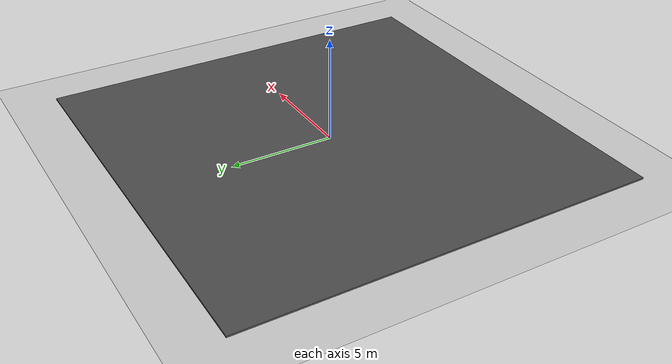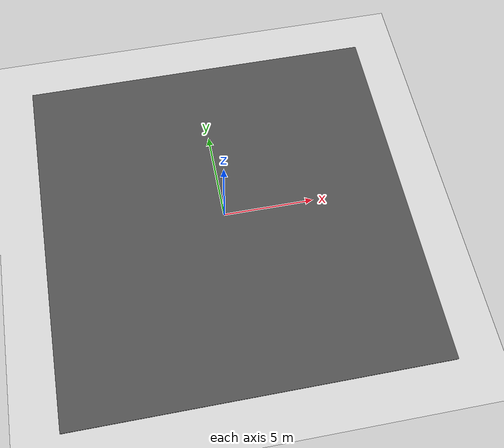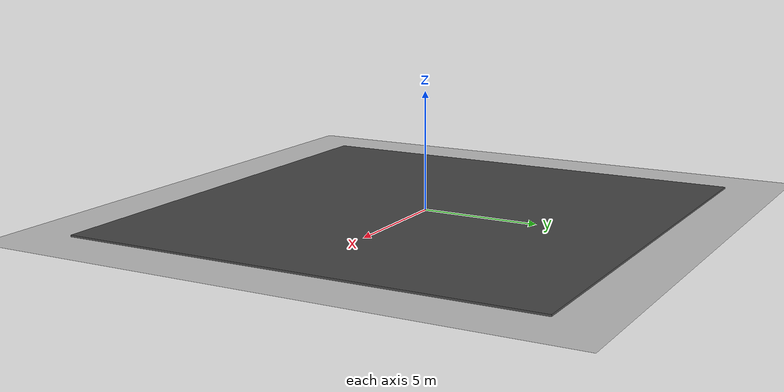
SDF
<sdf version="1.6">
 <world name="default">
  <model name="ground_plane">
   <static>1</static>
   <link name="link">
    <collision name="collision">
     <geometry><plane><normal>0 0 1</normal><size>100 100</size></plane></geometry>
     <surface><friction><ode><mu>100</mu><mu2>50</mu2></ode></friction></surface>
    </collision>
    <visual name="visual">
     <cast_shadows>0</cast_shadows>
     <geometry><plane><normal>0 0 1</normal><size>100 100</size></plane></geometry>
     <material>
      <script><uri>file://media/materials/scripts/gazebo.material</uri><name>Gazebo/Grey</name></script>
     </material>
    </visual>
   </link>
  </model>
  <light name="sun" type="directional">
   <pose>0 0 10 0 -0 0</pose>
   <diffuse>0.8 0.8 0.8 1</diffuse>
   <specular>0.1 0.1 0.1 1</specular>
   <attenuation>
    <range>1000</range>
    <constant>0.9</constant>
    <linear>0.01</linear>
    <quadratic>0.001</quadratic>
   </attenuation>
   <direction>-0.5 0.5 -1</direction>
  </light>
  <plugin name="ros_interface_plugin" filename="librotors_gazebo_ros_interface_plugin.so"/>
  <spherical_coordinates>
   <surface_model>EARTH_WGS84</surface_model>
   <latitude_deg>47.3667</latitude_deg>
   <longitude_deg>8.55</longitude_deg>
   <elevation>500</elevation>
   <heading_deg>0</heading_deg>
  </spherical_coordinates>
  <physics name="default_physics" default="0" type="ode">
   <ode>
    <solver>
     <type>quick</type>
     <iters>1000</iters>
     <sor>1.3</sor>
     <use_dynamic_moi_rescaling>0</use_dynamic_moi_rescaling>
    </solver>
    <constraints>
     <cfm>0</cfm>
     <erp>0.2</erp>
     <contact_max_correcting_vel>100</contact_max_correcting_vel>
     <contact_surface_layer>0.001</contact_surface_layer>
    </constraints>
   </ode>
   <max_step_size>0.01</max_step_size>
   <real_time_factor>1</real_time_factor>
   <real_time_update_rate>100</real_time_update_rate>
  </physics>
  <gravity>0 0 -9.8</gravity>
  <magnetic_field>6e-06 2.3e-05 -4.2e-05</magnetic_field>
  <atmosphere type="adiabatic"/>
  <scene><ambient>0.4 0.4 0.4 1</ambient><background>0.7 0.7 0.7 1</background><shadows>1</shadows></scene>
  <model name="asphalt_plane">
   <static>1</static>
   <link name="link">
    <collision name="collision"><geometry><box><size>20 20 0.1</size></box></geometry></collision>
    <visual name="visual">
     <cast_shadows>0</cast_shadows>
     <geometry><box><size>20 20 0.1</size></box></geometry>
     <material>
      <script>
       <uri>model://asphalt_plane/materials/scripts</uri>
       <uri>model://asphalt_plane/materials/textures</uri>
       <name>vrc/asphalt</name>
      </script>
     </material>
    </visual>
   </link>
   <pose>0.121846 -0.082303 0 0 -0 0</pose>
  </model>
 </world>
</sdf>
